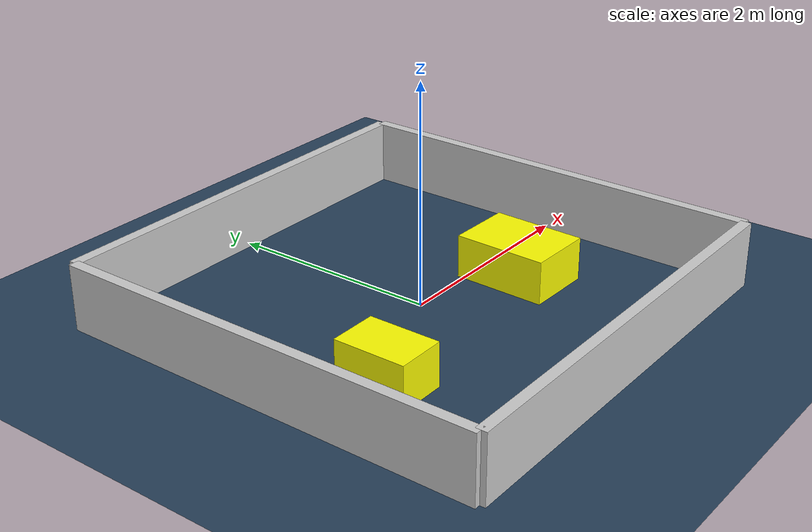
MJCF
<?xml version="1.0" ?>
<mujoco model="generated_environment">
  <option timestep="0.01" integrator="RK4" cone="elliptic"/>
  <default>
    <geom density="1"/>
  </default>
  <asset>
    <texture builtin="gradient" height="3072" rgb1="0.3 0.5 0.7" rgb2="0 0 0" type="skybox" width="512"/>
    <texture builtin="checker" height="300" mark="edge" markrgb="0.8 0.8 0.8" name="groundplane" rgb1="0.2 0.3 0.4" rgb2="0.1 0.2 0.3" type="2d" width="300"/>
    <material name="groundplane" reflectance="0.2" texrepeat="5 5" texture="groundplane" texuniform="true"/>
    <material name="robot" rgba="0.0 1.0 0.0 1"/>
  </asset>
  <worldbody>
    <light dir="0 0 -1" directional="true" pos="0 0 1.5"/>
    <geom condim="4" friction="1.0 0.005 0.001" material="groundplane" name="floor" size="0 0 0.05" type="plane"/>
    <body name="walls">
      <geom name="wall_1" condim="4" pos="-2.0 0.0 0.3" rgba="0.800000011920929 0.800000011920929 0.800000011920929 1.0" size="0.05 2.0 0.3" type="box"/>
      <geom name="wall_2" condim="4" pos="2.0 0.0 0.3" rgba="0.800000011920929 0.800000011920929 0.800000011920929 1.0" size="0.05 2.0 0.3" type="box"/>
      <geom name="wall_3" condim="4" pos="0.0 -2.0 0.3" rgba="0.800000011920929 0.800000011920929 0.800000011920929 1.0" size="2.0 0.05 0.3" type="box"/>
      <geom name="wall_4" condim="4" pos="0.0 2.0 0.3" rgba="0.800000011920929 0.800000011920929 0.800000011920929 1.0" size="2.0 0.05 0.3" type="box"/>
    </body>
    <body name="robot">
      <joint name="joint_x" type="slide" pos="0 0 0" axis="1 0 0"/>
      <joint name="joint_y" type="slide" pos="0 0 0" axis="0 1 0"/>
      <geom name="robot" type="sphere" pos="-1.7360854322958108 -1.311052761524429 0.2" size="0.05" mass="5." friction="1.0 0.005 0.0001" condim="4"/>
      <site name="sensor_ball"/>
    </body>
    <body name="obstacle_1_movable">
      <geom name="obstacle_1_movable" condim="4" pos="0.9297613394061552 -0.3809689250983601 0.2" euler="0 0 178.80299856054936" friction="1.0 0.005 0.001" rgba="1 1 0 1" size="0.3090011284500257 0.43316889266846487 0.2" type="box" mass="0.1"/>
      <joint type="free"/>
    </body>
    <body name="obstacle_2_movable">
      <geom name="obstacle_2_movable" condim="4" pos="-1.1885279203454482 -0.5758484956472978 0.2" euler="0 0 180.23036739350601" friction="1.0 0.005 0.001" rgba="1 1 0 1" size="0.2253915394683701 0.3320823065856872 0.2" type="box" mass="0.1"/>
      <joint type="free"/>
    </body>
  </worldbody>
  <actuator>
    <motor name="actuator_x" joint="joint_x" gear="1" ctrlrange="-1 1"/>
    <motor name="actuator_y" joint="joint_y" gear="1" ctrlrange="-1 1"/>
  </actuator>
</mujoco>
